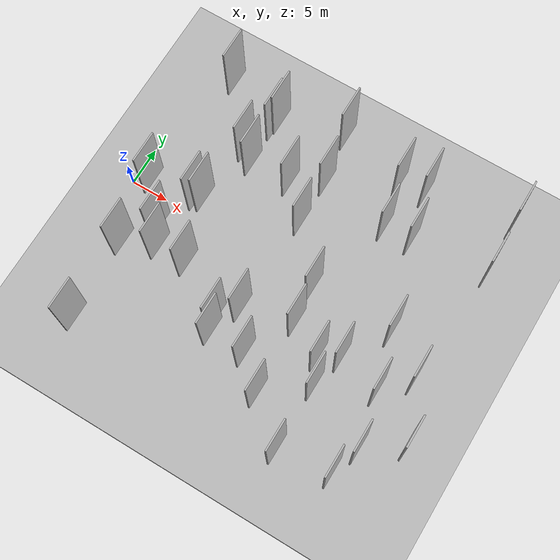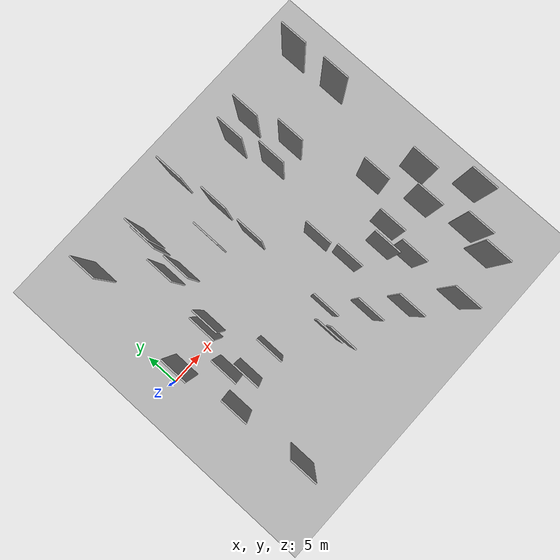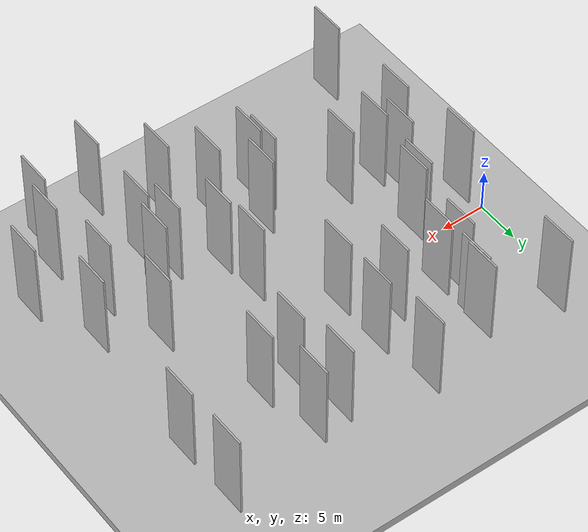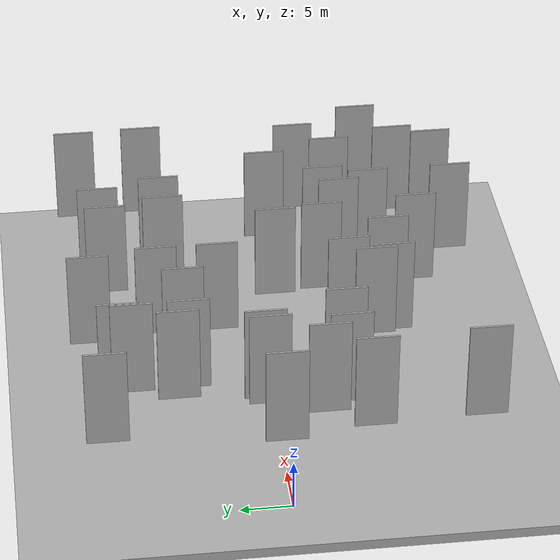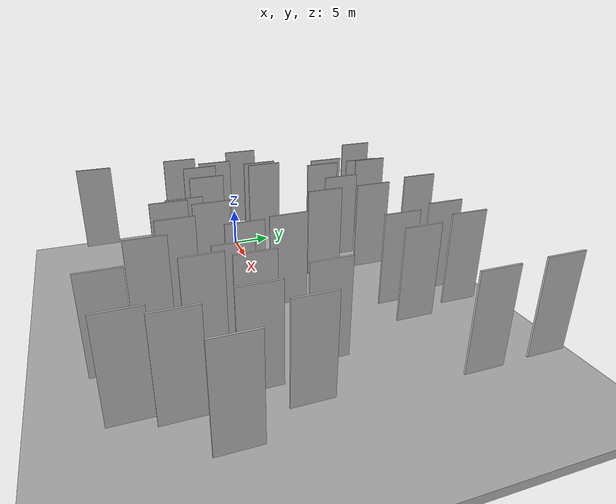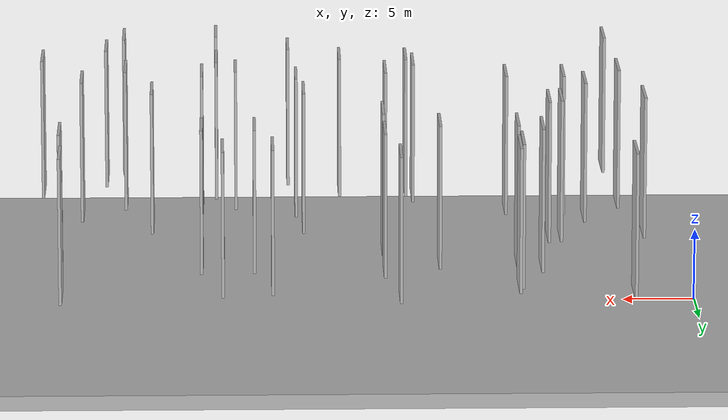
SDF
<?xml version="1.0" encoding="utf-8"?>

<sdf version="1.6">

   <world name="default">

      <gui fullscreen="0">

         <camera name="user_camera">

            <pose>-15 0 4.57585 0 0 0</pose>

            <view_controller>orbit</view_controller>

         </camera>

      </gui>

      <scene>

         <sky>

           <clouds>

             <speed>12</speed>

           </clouds>

         </sky>

         <ambient>0.4 0.4 0.4 1</ambient>

         <background>0.7 0.7 0.7 1</background>

         <shadows>1</shadows>

      </scene>

      <gravity>0 0 -9.8066</gravity>

      <magnetic_field>6e-06 2.3e-05 -4.2e-05</magnetic_field>

      <physics default="0" name="default_physics" type="ode">

         <ode>

            <solver>

               <type>quick</type>

               <iters>10</iters>

               <sor>1.0</sor>

               <use_dynamic_moi_rescaling>0</use_dynamic_moi_rescaling>

            </solver>

            <constraints>

               <cfm>0</cfm>

               <erp>0.2</erp>

               <contact_max_correcting_vel>100</contact_max_correcting_vel>

               <contact_surface_layer>0.001</contact_surface_layer>

            </constraints>

         </ode>

         <max_step_size>0.004</max_step_size>

         <real_time_factor>1</real_time_factor>

         <real_time_update_rate>250</real_time_update_rate>

      </physics>

      <light name="sun" type="directional">

         <cast_shadows>1</cast_shadows>

         <pose>0 0 10 0 0 0</pose>

         <diffuse>0.8 0.8 0.8 1</diffuse>

         <specular>0.2 0.2 0.2 1</specular>

         <attenuation>

            <range>1000</range>

            <constant>0.9</constant>

            <linear>0.01</linear>

            <quadratic>0.001</quadratic>

         </attenuation>

         <direction>-0.5 0.1 -0.9</direction>

      </light>

      <include>

         <name>ground_plane_1</name>

         <uri>model://HANNAS_ground_plane</uri>

         <pose>0 0 0  0 0 0</pose>

      </include>

      <include>

         <name>ground_plane_2</name>

         <uri>model://HANNAS_ground_plane</uri>

         <pose>100 0 0  0 0 0</pose>

      </include>

      <model name="HANNAS_wall_1">

         <static>1</static>

         <pose frame="">12.8453 8.3106 5.0 0.000000 0.000000 1.570796</pose>

         <link name="link">

            <pose frame="">0 0 5.00 0 0 0</pose>

            <collision name="collision">

               <geometry>

                  <box>

                     <size>4.00 0.2 10.00</size>

                  </box>

               </geometry>

               <max_contacts>10</max_contacts>

               <surface>

                  <contact>

                     <ode/>

                  </contact>

                  <bounce/>

                  <friction>

                     <torsional>

                        <ode/>

                     </torsional>

                     <ode/>

                  </friction>

               </surface>

            </collision>

            <visual name="visual">

               <cast_shadows>0</cast_shadows>

               <geometry>

                  <box>

                     <size>4.00 0.2 10.00</size>

                  </box>

               </geometry>

               <material>

                  <script>

                     <uri>model://HANNAS_wall/materials/scripts</uri>

                     <uri>model://HANNAS_wall/materials/textures</uri>

                     <name>vrc/HANNAS_wall</name>

                  </script>

               </material>

            </visual>

            <self_collide>0</self_collide>

            <enable_wind>0</enable_wind>

            <kinematic>0</kinematic>

         </link>

      </model>

      <model name="HANNAS_wall_2">

         <static>1</static>

         <pose frame="">18.1627 8.3795 5.0 0.000000 0.000000 1.570796</pose>

         <link name="link">

            <pose frame="">0 0 5.00 0 0 0</pose>

            <collision name="collision">

               <geometry>

                  <box>

                     <size>4.00 0.2 10.00</size>

                  </box>

               </geometry>

               <max_contacts>10</max_contacts>

               <surface>

                  <contact>

                     <ode/>

                  </contact>

                  <bounce/>

                  <friction>

                     <torsional>

                        <ode/>

                     </torsional>

                     <ode/>

                  </friction>

               </surface>

            </collision>

            <visual name="visual">

               <cast_shadows>0</cast_shadows>

               <geometry>

                  <box>

                     <size>4.00 0.2 10.00</size>

                  </box>

               </geometry>

               <material>

                  <script>

                     <uri>model://HANNAS_wall/materials/scripts</uri>

                     <uri>model://HANNAS_wall/materials/textures</uri>

                     <name>vrc/HANNAS_wall</name>

                  </script>

               </material>

            </visual>

            <self_collide>0</self_collide>

            <enable_wind>0</enable_wind>

            <kinematic>0</kinematic>

         </link>

      </model>

      <model name="HANNAS_wall_3">

         <static>1</static>

         <pose frame="">28.3138 -15.6498 5.0 0.000000 0.000000 1.570796</pose>

         <link name="link">

            <pose frame="">0 0 5.00 0 0 0</pose>

            <collision name="collision">

               <geometry>

                  <box>

                     <size>4.00 0.2 10.00</size>

                  </box>

               </geometry>

               <max_contacts>10</max_contacts>

               <surface>

                  <contact>

                     <ode/>

                  </contact>

                  <bounce/>

                  <friction>

                     <torsional>

                        <ode/>

                     </torsional>

                     <ode/>

                  </friction>

               </surface>

            </collision>

            <visual name="visual">

               <cast_shadows>0</cast_shadows>

               <geometry>

                  <box>

                     <size>4.00 0.2 10.00</size>

                  </box>

               </geometry>

               <material>

                  <script>

                     <uri>model://HANNAS_wall/materials/scripts</uri>

                     <uri>model://HANNAS_wall/materials/textures</uri>

                     <name>vrc/HANNAS_wall</name>

                  </script>

               </material>

            </visual>

            <self_collide>0</self_collide>

            <enable_wind>0</enable_wind>

            <kinematic>0</kinematic>

         </link>

      </model>

      <model name="HANNAS_wall_4">

         <static>1</static>

         <pose frame="">30.8134 9.2446 5.0 0.000000 0.000000 1.570796</pose>

         <link name="link">

            <pose frame="">0 0 5.00 0 0 0</pose>

            <collision name="collision">

               <geometry>

                  <box>

                     <size>4.00 0.2 10.00</size>

                  </box>

               </geometry>

               <max_contacts>10</max_contacts>

               <surface>

                  <contact>

                     <ode/>

                  </contact>

                  <bounce/>

                  <friction>

                     <torsional>

                        <ode/>

                     </torsional>

                     <ode/>

                  </friction>

               </surface>

            </collision>

            <visual name="visual">

               <cast_shadows>0</cast_shadows>

               <geometry>

                  <box>

                     <size>4.00 0.2 10.00</size>

                  </box>

               </geometry>

               <material>

                  <script>

                     <uri>model://HANNAS_wall/materials/scripts</uri>

                     <uri>model://HANNAS_wall/materials/textures</uri>

                     <name>vrc/HANNAS_wall</name>

                  </script>

               </material>

            </visual>

            <self_collide>0</self_collide>

            <enable_wind>0</enable_wind>

            <kinematic>0</kinematic>

         </link>

      </model>

      <model name="HANNAS_wall_5">

         <static>1</static>

         <pose frame="">40.1253 -19.0941 5.0 0.000000 0.000000 1.570796</pose>

         <link name="link">

            <pose frame="">0 0 5.00 0 0 0</pose>

            <collision name="collision">

               <geometry>

                  <box>

                     <size>4.00 0.2 10.00</size>

                  </box>

               </geometry>

               <max_contacts>10</max_contacts>

               <surface>

                  <contact>

                     <ode/>

                  </contact>

                  <bounce/>

                  <friction>

                     <torsional>

                        <ode/>

                     </torsional>

                     <ode/>

                  </friction>

               </surface>

            </collision>

            <visual name="visual">

               <cast_shadows>0</cast_shadows>

               <geometry>

                  <box>

                     <size>4.00 0.2 10.00</size>

                  </box>

               </geometry>

               <material>

                  <script>

                     <uri>model://HANNAS_wall/materials/scripts</uri>

                     <uri>model://HANNAS_wall/materials/textures</uri>

                     <name>vrc/HANNAS_wall</name>

                  </script>

               </material>

            </visual>

            <self_collide>0</self_collide>

            <enable_wind>0</enable_wind>

            <kinematic>0</kinematic>

         </link>

      </model>

      <model name="HANNAS_wall_6">

         <static>1</static>

         <pose frame="">9.5017 1.0078 5.0 0.000000 0.000000 1.570796</pose>

         <link name="link">

            <pose frame="">0 0 5.00 0 0 0</pose>

            <collision name="collision">

               <geometry>

                  <box>

                     <size>4.00 0.2 10.00</size>

                  </box>

               </geometry>

               <max_contacts>10</max_contacts>

               <surface>

                  <contact>

                     <ode/>

                  </contact>

                  <bounce/>

                  <friction>

                     <torsional>

                        <ode/>

                     </torsional>

                     <ode/>

                  </friction>

               </surface>

            </collision>

            <visual name="visual">

               <cast_shadows>0</cast_shadows>

               <geometry>

                  <box>

                     <size>4.00 0.2 10.00</size>

                  </box>

               </geometry>

               <material>

                  <script>

                     <uri>model://HANNAS_wall/materials/scripts</uri>

                     <uri>model://HANNAS_wall/materials/textures</uri>

                     <name>vrc/HANNAS_wall</name>

                  </script>

               </material>

            </visual>

            <self_collide>0</self_collide>

            <enable_wind>0</enable_wind>

            <kinematic>0</kinematic>

         </link>

      </model>

      <model name="HANNAS_wall_7">

         <static>1</static>

         <pose frame="">12.7423 13.6665 5.0 0.000000 0.000000 1.570796</pose>

         <link name="link">

            <pose frame="">0 0 5.00 0 0 0</pose>

            <collision name="collision">

               <geometry>

                  <box>

                     <size>4.00 0.2 10.00</size>

                  </box>

               </geometry>

               <max_contacts>10</max_contacts>

               <surface>

                  <contact>

                     <ode/>

                  </contact>

                  <bounce/>

                  <friction>

                     <torsional>

                        <ode/>

                     </torsional>

                     <ode/>

                  </friction>

               </surface>

            </collision>

            <visual name="visual">

               <cast_shadows>0</cast_shadows>

               <geometry>

                  <box>

                     <size>4.00 0.2 10.00</size>

                  </box>

               </geometry>

               <material>

                  <script>

                     <uri>model://HANNAS_wall/materials/scripts</uri>

                     <uri>model://HANNAS_wall/materials/textures</uri>

                     <name>vrc/HANNAS_wall</name>

                  </script>

               </material>

            </visual>

            <self_collide>0</self_collide>

            <enable_wind>0</enable_wind>

            <kinematic>0</kinematic>

         </link>

      </model>

      <model name="HANNAS_wall_8">

         <static>1</static>

         <pose frame="">21.4914 -8.0244 5.0 0.000000 0.000000 1.570796</pose>

         <link name="link">

            <pose frame="">0 0 5.00 0 0 0</pose>

            <collision name="collision">

               <geometry>

                  <box>

                     <size>4.00 0.2 10.00</size>

                  </box>

               </geometry>

               <max_contacts>10</max_contacts>

               <surface>

                  <contact>

                     <ode/>

                  </contact>

                  <bounce/>

                  <friction>

                     <torsional>

                        <ode/>

                     </torsional>

                     <ode/>

                  </friction>

               </surface>

            </collision>

            <visual name="visual">

               <cast_shadows>0</cast_shadows>

               <geometry>

                  <box>

                     <size>4.00 0.2 10.00</size>

                  </box>

               </geometry>

               <material>

                  <script>

                     <uri>model://HANNAS_wall/materials/scripts</uri>

                     <uri>model://HANNAS_wall/materials/textures</uri>

                     <name>vrc/HANNAS_wall</name>

                  </script>

               </material>

            </visual>

            <self_collide>0</self_collide>

            <enable_wind>0</enable_wind>

            <kinematic>0</kinematic>

         </link>

      </model>

      <model name="HANNAS_wall_9">

         <static>1</static>

         <pose frame="">27.8183 -6.2099 5.0 0.000000 0.000000 1.570796</pose>

         <link name="link">

            <pose frame="">0 0 5.00 0 0 0</pose>

            <collision name="collision">

               <geometry>

                  <box>

                     <size>4.00 0.2 10.00</size>

                  </box>

               </geometry>

               <max_contacts>10</max_contacts>

               <surface>

                  <contact>

                     <ode/>

                  </contact>

                  <bounce/>

                  <friction>

                     <torsional>

                        <ode/>

                     </torsional>

                     <ode/>

                  </friction>

               </surface>

            </collision>

            <visual name="visual">

               <cast_shadows>0</cast_shadows>

               <geometry>

                  <box>

                     <size>4.00 0.2 10.00</size>

                  </box>

               </geometry>

               <material>

                  <script>

                     <uri>model://HANNAS_wall/materials/scripts</uri>

                     <uri>model://HANNAS_wall/materials/textures</uri>

                     <name>vrc/HANNAS_wall</name>

                  </script>

               </material>

            </visual>

            <self_collide>0</self_collide>

            <enable_wind>0</enable_wind>

            <kinematic>0</kinematic>

         </link>

      </model>

      <model name="HANNAS_wall_10">

         <static>1</static>

         <pose frame="">39.8515 -8.5372 5.0 0.000000 0.000000 1.570796</pose>

         <link name="link">

            <pose frame="">0 0 5.00 0 0 0</pose>

            <collision name="collision">

               <geometry>

                  <box>

                     <size>4.00 0.2 10.00</size>

                  </box>

               </geometry>

               <max_contacts>10</max_contacts>

               <surface>

                  <contact>

                     <ode/>

                  </contact>

                  <bounce/>

                  <friction>

                     <torsional>

                        <ode/>

                     </torsional>

                     <ode/>

                  </friction>

               </surface>

            </collision>

            <visual name="visual">

               <cast_shadows>0</cast_shadows>

               <geometry>

                  <box>

                     <size>4.00 0.2 10.00</size>

                  </box>

               </geometry>

               <material>

                  <script>

                     <uri>model://HANNAS_wall/materials/scripts</uri>

                     <uri>model://HANNAS_wall/materials/textures</uri>

                     <name>vrc/HANNAS_wall</name>

                  </script>

               </material>

            </visual>

            <self_collide>0</self_collide>

            <enable_wind>0</enable_wind>

            <kinematic>0</kinematic>

         </link>

      </model>

      <model name="HANNAS_wall_11">

         <static>1</static>

         <pose frame="">21.9610 10.6556 5.0 0.000000 0.000000 1.570796</pose>

         <link name="link">

            <pose frame="">0 0 5.00 0 0 0</pose>

            <collision name="collision">

               <geometry>

                  <box>

                     <size>4.00 0.2 10.00</size>

                  </box>

               </geometry>

               <max_contacts>10</max_contacts>

               <surface>

                  <contact>

                     <ode/>

                  </contact>

                  <bounce/>

                  <friction>

                     <torsional>

                        <ode/>

                     </torsional>

                     <ode/>

                  </friction>

               </surface>

            </collision>

            <visual name="visual">

               <cast_shadows>0</cast_shadows>

               <geometry>

                  <box>

                     <size>4.00 0.2 10.00</size>

                  </box>

               </geometry>

               <material>

                  <script>

                     <uri>model://HANNAS_wall/materials/scripts</uri>

                     <uri>model://HANNAS_wall/materials/textures</uri>

                     <name>vrc/HANNAS_wall</name>

                  </script>

               </material>

            </visual>

            <self_collide>0</self_collide>

            <enable_wind>0</enable_wind>

            <kinematic>0</kinematic>

         </link>

      </model>

      <model name="HANNAS_wall_12">

         <static>1</static>

         <pose frame="">19.4696 -10.4478 5.0 0.000000 0.000000 1.570796</pose>

         <link name="link">

            <pose frame="">0 0 5.00 0 0 0</pose>

            <collision name="collision">

               <geometry>

                  <box>

                     <size>4.00 0.2 10.00</size>

                  </box>

               </geometry>

               <max_contacts>10</max_contacts>

               <surface>

                  <contact>

                     <ode/>

                  </contact>

                  <bounce/>

                  <friction>

                     <torsional>

                        <ode/>

                     </torsional>

                     <ode/>

                  </friction>

               </surface>

            </collision>

            <visual name="visual">

               <cast_shadows>0</cast_shadows>

               <geometry>

                  <box>

                     <size>4.00 0.2 10.00</size>

                  </box>

               </geometry>

               <material>

                  <script>

                     <uri>model://HANNAS_wall/materials/scripts</uri>

                     <uri>model://HANNAS_wall/materials/textures</uri>

                     <name>vrc/HANNAS_wall</name>

                  </script>

               </material>

            </visual>

            <self_collide>0</self_collide>

            <enable_wind>0</enable_wind>

            <kinematic>0</kinematic>

         </link>

      </model>

      <model name="HANNAS_wall_13">

         <static>1</static>

         <pose frame="">19.9382 -12.1667 5.0 0.000000 0.000000 1.570796</pose>

         <link name="link">

            <pose frame="">0 0 5.00 0 0 0</pose>

            <collision name="collision">

               <geometry>

                  <box>

                     <size>4.00 0.2 10.00</size>

                  </box>

               </geometry>

               <max_contacts>10</max_contacts>

               <surface>

                  <contact>

                     <ode/>

                  </contact>

                  <bounce/>

                  <friction>

                     <torsional>

                        <ode/>

                     </torsional>

                     <ode/>

                  </friction>

               </surface>

            </collision>

            <visual name="visual">

               <cast_shadows>0</cast_shadows>

               <geometry>

                  <box>

                     <size>4.00 0.2 10.00</size>

                  </box>

               </geometry>

               <material>

                  <script>

                     <uri>model://HANNAS_wall/materials/scripts</uri>

                     <uri>model://HANNAS_wall/materials/textures</uri>

                     <name>vrc/HANNAS_wall</name>

                  </script>

               </material>

            </visual>

            <self_collide>0</self_collide>

            <enable_wind>0</enable_wind>

            <kinematic>0</kinematic>

         </link>

      </model>

      <model name="HANNAS_wall_14">

         <static>1</static>

         <pose frame="">21.9502 4.7360 5.0 0.000000 0.000000 1.570796</pose>

         <link name="link">

            <pose frame="">0 0 5.00 0 0 0</pose>

            <collision name="collision">

               <geometry>

                  <box>

                     <size>4.00 0.2 10.00</size>

                  </box>

               </geometry>

               <max_contacts>10</max_contacts>

               <surface>

                  <contact>

                     <ode/>

                  </contact>

                  <bounce/>

                  <friction>

                     <torsional>

                        <ode/>

                     </torsional>

                     <ode/>

                  </friction>

               </surface>

            </collision>

            <visual name="visual">

               <cast_shadows>0</cast_shadows>

               <geometry>

                  <box>

                     <size>4.00 0.2 10.00</size>

                  </box>

               </geometry>

               <material>

                  <script>

                     <uri>model://HANNAS_wall/materials/scripts</uri>

                     <uri>model://HANNAS_wall/materials/textures</uri>

                     <name>vrc/HANNAS_wall</name>

                  </script>

               </material>

            </visual>

            <self_collide>0</self_collide>

            <enable_wind>0</enable_wind>

            <kinematic>0</kinematic>

         </link>

      </model>

      <model name="HANNAS_wall_15">

         <static>1</static>

         <pose frame="">12.9698 14.8573 5.0 0.000000 0.000000 1.570796</pose>

         <link name="link">

            <pose frame="">0 0 5.00 0 0 0</pose>

            <collision name="collision">

               <geometry>

                  <box>

                     <size>4.00 0.2 10.00</size>

                  </box>

               </geometry>

               <max_contacts>10</max_contacts>

               <surface>

                  <contact>

                     <ode/>

                  </contact>

                  <bounce/>

                  <friction>

                     <torsional>

                        <ode/>

                     </torsional>

                     <ode/>

                  </friction>

               </surface>

            </collision>

            <visual name="visual">

               <cast_shadows>0</cast_shadows>

               <geometry>

                  <box>

                     <size>4.00 0.2 10.00</size>

                  </box>

               </geometry>

               <material>

                  <script>

                     <uri>model://HANNAS_wall/materials/scripts</uri>

                     <uri>model://HANNAS_wall/materials/textures</uri>

                     <name>vrc/HANNAS_wall</name>

                  </script>

               </material>

            </visual>

            <self_collide>0</self_collide>

            <enable_wind>0</enable_wind>

            <kinematic>0</kinematic>

         </link>

      </model>

      <model name="HANNAS_wall_16">

         <static>1</static>

         <pose frame="">34.4511 -7.2020 5.0 0.000000 0.000000 1.570796</pose>

         <link name="link">

            <pose frame="">0 0 5.00 0 0 0</pose>

            <collision name="collision">

               <geometry>

                  <box>

                     <size>4.00 0.2 10.00</size>

                  </box>

               </geometry>

               <max_contacts>10</max_contacts>

               <surface>

                  <contact>

                     <ode/>

                  </contact>

                  <bounce/>

                  <friction>

                     <torsional>

                        <ode/>

                     </torsional>

                     <ode/>

                  </friction>

               </surface>

            </collision>

            <visual name="visual">

               <cast_shadows>0</cast_shadows>

               <geometry>

                  <box>

                     <size>4.00 0.2 10.00</size>

                  </box>

               </geometry>

               <material>

                  <script>

                     <uri>model://HANNAS_wall/materials/scripts</uri>

                     <uri>model://HANNAS_wall/materials/textures</uri>

                     <name>vrc/HANNAS_wall</name>

                  </script>

               </material>

            </visual>

            <self_collide>0</self_collide>

            <enable_wind>0</enable_wind>

            <kinematic>0</kinematic>

         </link>

      </model>

      <model name="HANNAS_wall_17">

         <static>1</static>

         <pose frame="">37.9064 -1.6458 5.0 0.000000 0.000000 1.570796</pose>

         <link name="link">

            <pose frame="">0 0 5.00 0 0 0</pose>

            <collision name="collision">

               <geometry>

                  <box>

                     <size>4.00 0.2 10.00</size>

                  </box>

               </geometry>

               <max_contacts>10</max_contacts>

               <surface>

                  <contact>

                     <ode/>

                  </contact>

                  <bounce/>

                  <friction>

                     <torsional>

                        <ode/>

                     </torsional>

                     <ode/>

                  </friction>

               </surface>

            </collision>

            <visual name="visual">

               <cast_shadows>0</cast_shadows>

               <geometry>

                  <box>

                     <size>4.00 0.2 10.00</size>

                  </box>

               </geometry>

               <material>

                  <script>

                     <uri>model://HANNAS_wall/materials/scripts</uri>

                     <uri>model://HANNAS_wall/materials/textures</uri>

                     <name>vrc/HANNAS_wall</name>

                  </script>

               </material>

            </visual>

            <self_collide>0</self_collide>

            <enable_wind>0</enable_wind>

            <kinematic>0</kinematic>

         </link>

      </model>

      <model name="HANNAS_wall_18">

         <static>1</static>

         <pose frame="">32.0667 -8.4886 5.0 0.000000 0.000000 1.570796</pose>

         <link name="link">

            <pose frame="">0 0 5.00 0 0 0</pose>

            <collision name="collision">

               <geometry>

                  <box>

                     <size>4.00 0.2 10.00</size>

                  </box>

               </geometry>

               <max_contacts>10</max_contacts>

               <surface>

                  <contact>

                     <ode/>

                  </contact>

                  <bounce/>

                  <friction>

                     <torsional>

                        <ode/>

                     </torsional>

                     <ode/>

                  </friction>

               </surface>

            </collision>

            <visual name="visual">

               <cast_shadows>0</cast_shadows>

               <geometry>

                  <box>

                     <size>4.00 0.2 10.00</size>

                  </box>

               </geometry>

               <material>

                  <script>

                     <uri>model://HANNAS_wall/materials/scripts</uri>

                     <uri>model://HANNAS_wall/materials/textures</uri>

                     <name>vrc/HANNAS_wall</name>

                  </script>

               </material>

            </visual>

            <self_collide>0</self_collide>

            <enable_wind>0</enable_wind>

            <kinematic>0</kinematic>

         </link>

      </model>

      <model name="HANNAS_wall_19">

         <static>1</static>

         <pose frame="">34.4124 9.3689 5.0 0.000000 0.000000 1.570796</pose>

         <link name="link">

            <pose frame="">0 0 5.00 0 0 0</pose>

            <collision name="collision">

               <geometry>

                  <box>

                     <size>4.00 0.2 10.00</size>

                  </box>

               </geometry>

               <max_contacts>10</max_contacts>

               <surface>

                  <contact>

                     <ode/>

                  </contact>

                  <bounce/>

                  <friction>

                     <torsional>

                        <ode/>

                     </torsional>

                     <ode/>

                  </friction>

               </surface>

            </collision>

            <visual name="visual">

               <cast_shadows>0</cast_shadows>

               <geometry>

                  <box>

                     <size>4.00 0.2 10.00</size>

                  </box>

               </geometry>

               <material>

                  <script>

                     <uri>model://HANNAS_wall/materials/scripts</uri>

                     <uri>model://HANNAS_wall/materials/textures</uri>

                     <name>vrc/HANNAS_wall</name>

                  </script>

               </material>

            </visual>

            <self_collide>0</self_collide>

            <enable_wind>0</enable_wind>

            <kinematic>0</kinematic>

         </link>

      </model>

      <model name="HANNAS_wall_20">

         <static>1</static>

         <pose frame="">33.4410 -11.6214 5.0 0.000000 0.000000 1.570796</pose>

         <link name="link">

            <pose frame="">0 0 5.00 0 0 0</pose>

            <collision name="collision">

               <geometry>

                  <box>

                     <size>4.00 0.2 10.00</size>

                  </box>

               </geometry>

               <max_contacts>10</max_contacts>

               <surface>

                  <contact>

                     <ode/>

                  </contact>

                  <bounce/>

                  <friction>

                     <torsional>

                        <ode/>

                     </torsional>

                     <ode/>

                  </friction>

               </surface>

            </collision>

            <visual name="visual">

               <cast_shadows>0</cast_shadows>

               <geometry>

                  <box>

                     <size>4.00 0.2 10.00</size>

                  </box>

               </geometry>

               <material>

                  <script>

                     <uri>model://HANNAS_wall/materials/scripts</uri>

                     <uri>model://HANNAS_wall/materials/textures</uri>

                     <name>vrc/HANNAS_wall</name>

                  </script>

               </material>

            </visual>

            <self_collide>0</self_collide>

            <enable_wind>0</enable_wind>

            <kinematic>0</kinematic>

         </link>

      </model>

      <model name="HANNAS_wall_21">

         <static>1</static>

         <pose frame="">10.3598 1.3496 5.0 0.000000 0.000000 1.570796</pose>

         <link name="link">

            <pose frame="">0 0 5.00 0 0 0</pose>

            <collision name="collision">

               <geometry>

                  <box>

                     <size>4.00 0.2 10.00</size>

                  </box>

               </geometry>

               <max_contacts>10</max_contacts>

               <surface>

                  <contact>

                     <ode/>

                  </contact>

                  <bounce/>

                  <friction>

                     <torsional>

                        <ode/>

                     </torsional>

                     <ode/>

                  </friction>

               </surface>

            </collision>

            <visual name="visual">

               <cast_shadows>0</cast_shadows>

               <geometry>

                  <box>

                     <size>4.00 0.2 10.00</size>

                  </box>

               </geometry>

               <material>

                  <script>

                     <uri>model://HANNAS_wall/materials/scripts</uri>

                     <uri>model://HANNAS_wall/materials/textures</uri>

                     <name>vrc/HANNAS_wall</name>

                  </script>

               </material>

            </visual>

            <self_collide>0</self_collide>

            <enable_wind>0</enable_wind>

            <kinematic>0</kinematic>

         </link>

      </model>

      <model name="HANNAS_wall_22">

         <static>1</static>

         <pose frame="">33.4811 -19.9595 5.0 0.000000 0.000000 1.570796</pose>

         <link name="link">

            <pose frame="">0 0 5.00 0 0 0</pose>

            <collision name="collision">

               <geometry>

                  <box>

                     <size>4.00 0.2 10.00</size>

                  </box>

               </geometry>

               <max_contacts>10</max_contacts>

               <surface>

                  <contact>

                     <ode/>

                  </contact>

                  <bounce/>

                  <friction>

                     <torsional>

                        <ode/>

                     </torsional>

                     <ode/>

                  </friction>

               </surface>

            </collision>

            <visual name="visual">

               <cast_shadows>0</cast_shadows>

               <geometry>

                  <box>

                     <size>4.00 0.2 10.00</size>

                  </box>

               </geometry>

               <material>

                  <script>

                     <uri>model://HANNAS_wall/materials/scripts</uri>

                     <uri>model://HANNAS_wall/materials/textures</uri>

                     <name>vrc/HANNAS_wall</name>

                  </script>

               </material>

            </visual>

            <self_collide>0</self_collide>

            <enable_wind>0</enable_wind>

            <kinematic>0</kinematic>

         </link>

      </model>

      <model name="HANNAS_wall_23">

         <static>1</static>

         <pose frame="">11.2123 9.4405 5.0 0.000000 0.000000 1.570796</pose>

         <link name="link">

            <pose frame="">0 0 5.00 0 0 0</pose>

            <collision name="collision">

               <geometry>

                  <box>

                     <size>4.00 0.2 10.00</size>

                  </box>

               </geometry>

               <max_contacts>10</max_contacts>

               <surface>

                  <contact>

                     <ode/>

                  </contact>

                  <bounce/>

                  <friction>

                     <torsional>

                        <ode/>

                     </torsional>

                     <ode/>

                  </friction>

               </surface>

            </collision>

            <visual name="visual">

               <cast_shadows>0</cast_shadows>

               <geometry>

                  <box>

                     <size>4.00 0.2 10.00</size>

                  </box>

               </geometry>

               <material>

                  <script>

                     <uri>model://HANNAS_wall/materials/scripts</uri>

                     <uri>model://HANNAS_wall/materials/textures</uri>

                     <name>vrc/HANNAS_wall</name>

                  </script>

               </material>

            </visual>

            <self_collide>0</self_collide>

            <enable_wind>0</enable_wind>

            <kinematic>0</kinematic>

         </link>

      </model>

      <model name="HANNAS_wall_24">

         <static>1</static>

         <pose frame="">45.8084 -12.1148 5.0 0.000000 0.000000 1.570796</pose>

         <link name="link">

            <pose frame="">0 0 5.00 0 0 0</pose>

            <collision name="collision">

               <geometry>

                  <box>

                     <size>4.00 0.2 10.00</size>

                  </box>

               </geometry>

               <max_contacts>10</max_contacts>

               <surface>

                  <contact>

                     <ode/>

                  </contact>

                  <bounce/>

                  <friction>

                     <torsional>

                        <ode/>

                     </torsional>

                     <ode/>

                  </friction>

               </surface>

            </collision>

            <visual name="visual">

               <cast_shadows>0</cast_shadows>

               <geometry>

                  <box>

                     <size>4.00 0.2 10.00</size>

                  </box>

               </geometry>

               <material>

                  <script>

                     <uri>model://HANNAS_wall/materials/scripts</uri>

                     <uri>model://HANNAS_wall/materials/textures</uri>

                     <name>vrc/HANNAS_wall</name>

                  </script>

               </material>

            </visual>

            <self_collide>0</self_collide>

            <enable_wind>0</enable_wind>

            <kinematic>0</kinematic>

         </link>

      </model>

      <model name="HANNAS_wall_25">

         <static>1</static>

         <pose frame="">13.0143 -6.5924 5.0 0.000000 0.000000 1.570796</pose>

         <link name="link">

            <pose frame="">0 0 5.00 0 0 0</pose>

            <collision name="collision">

               <geometry>

                  <box>

                     <size>4.00 0.2 10.00</size>

                  </box>

               </geometry>

               <max_contacts>10</max_contacts>

               <surface>

                  <contact>

                     <ode/>

                  </contact>

                  <bounce/>

                  <friction>

                     <torsional>

                        <ode/>

                     </torsional>

                     <ode/>

                  </friction>

               </surface>

            </collision>

            <visual name="visual">

               <cast_shadows>0</cast_shadows>

               <geometry>

                  <box>

                     <size>4.00 0.2 10.00</size>

                  </box>

               </geometry>

               <material>

                  <script>

                     <uri>model://HANNAS_wall/materials/scripts</uri>

                     <uri>model://HANNAS_wall/materials/textures</uri>

                     <name>vrc/HANNAS_wall</name>

                  </script>

               </material>

            </visual>

            <self_collide>0</self_collide>

            <enable_wind>0</enable_wind>

            <kinematic>0</kinematic>

         </link>

      </model>

      <model name="HANNAS_wall_26">

         <static>1</static>

         <pose frame="">8.9783 -6.5393 5.0 0.000000 0.000000 1.570796</pose>

         <link name="link">

            <pose frame="">0 0 5.00 0 0 0</pose>

            <collision name="collision">

               <geometry>

                  <box>

                     <size>4.00 0.2 10.00</size>

                  </box>

               </geometry>

               <max_contacts>10</max_contacts>

               <surface>

                  <contact>

                     <ode/>

                  </contact>

                  <bounce/>

                  <friction>

                     <torsional>

                        <ode/>

                     </torsional>

                     <ode/>

                  </friction>

               </surface>

            </collision>

            <visual name="visual">

               <cast_shadows>0</cast_shadows>

               <geometry>

                  <box>

                     <size>4.00 0.2 10.00</size>

                  </box>

               </geometry>

               <material>

                  <script>

                     <uri>model://HANNAS_wall/materials/scripts</uri>

                     <uri>model://HANNAS_wall/materials/textures</uri>

                     <name>vrc/HANNAS_wall</name>

                  </script>

               </material>

            </visual>

            <self_collide>0</self_collide>

            <enable_wind>0</enable_wind>

            <kinematic>0</kinematic>

         </link>

      </model>

      <model name="HANNAS_wall_27">

         <static>1</static>

         <pose frame="">27.3443 -1.5603 5.0 0.000000 0.000000 1.570796</pose>

         <link name="link">

            <pose frame="">0 0 5.00 0 0 0</pose>

            <collision name="collision">

               <geometry>

                  <box>

                     <size>4.00 0.2 10.00</size>

                  </box>

               </geometry>

               <max_contacts>10</max_contacts>

               <surface>

                  <contact>

                     <ode/>

                  </contact>

                  <bounce/>

                  <friction>

                     <torsional>

                        <ode/>

                     </torsional>

                     <ode/>

                  </friction>

               </surface>

            </collision>

            <visual name="visual">

               <cast_shadows>0</cast_shadows>

               <geometry>

                  <box>

                     <size>4.00 0.2 10.00</size>

                  </box>

               </geometry>

               <material>

                  <script>

                     <uri>model://HANNAS_wall/materials/scripts</uri>

                     <uri>model://HANNAS_wall/materials/textures</uri>

                     <name>vrc/HANNAS_wall</name>

                  </script>

               </material>

            </visual>

            <self_collide>0</self_collide>

            <enable_wind>0</enable_wind>

            <kinematic>0</kinematic>

         </link>

      </model>

      <model name="HANNAS_wall_28">

         <static>1</static>

         <pose frame="">41.3364 -15.3041 5.0 0.000000 0.000000 1.570796</pose>

         <link name="link">

            <pose frame="">0 0 5.00 0 0 0</pose>

            <collision name="collision">

               <geometry>

                  <box>

                     <size>4.00 0.2 10.00</size>

                  </box>

               </geometry>

               <max_contacts>10</max_contacts>

               <surface>

                  <contact>

                     <ode/>

                  </contact>

                  <bounce/>

                  <friction>

                     <torsional>

                        <ode/>

                     </torsional>

                     <ode/>

                  </friction>

               </surface>

            </collision>

            <visual name="visual">

               <cast_shadows>0</cast_shadows>

               <geometry>

                  <box>

                     <size>4.00 0.2 10.00</size>

                  </box>

               </geometry>

               <material>

                  <script>

                     <uri>model://HANNAS_wall/materials/scripts</uri>

                     <uri>model://HANNAS_wall/materials/textures</uri>

                     <name>vrc/HANNAS_wall</name>

                  </script>

               </material>

            </visual>

            <self_collide>0</self_collide>

            <enable_wind>0</enable_wind>

            <kinematic>0</kinematic>

         </link>

      </model>

      <model name="HANNAS_wall_29">

         <static>1</static>

         <pose frame="">7.5657 -4.3244 5.0 0.000000 0.000000 1.570796</pose>

         <link name="link">

            <pose frame="">0 0 5.00 0 0 0</pose>

            <collision name="collision">

               <geometry>

                  <box>

                     <size>4.00 0.2 10.00</size>

                  </box>

               </geometry>

               <max_contacts>10</max_contacts>

               <surface>

                  <contact>

                     <ode/>

                  </contact>

                  <bounce/>

                  <friction>

                     <torsional>

                        <ode/>

                     </torsional>

                     <ode/>

                  </friction>

               </surface>

            </collision>

            <visual name="visual">

               <cast_shadows>0</cast_shadows>

               <geometry>

                  <box>

                     <size>4.00 0.2 10.00</size>

                  </box>

               </geometry>

               <material>

                  <script>

                     <uri>model://HANNAS_wall/materials/scripts</uri>

                     <uri>model://HANNAS_wall/materials/textures</uri>

                     <name>vrc/HANNAS_wall</name>

                  </script>

               </material>

            </visual>

            <self_collide>0</self_collide>

            <enable_wind>0</enable_wind>

            <kinematic>0</kinematic>

         </link>

      </model>

      <model name="HANNAS_wall_30">

         <static>1</static>

         <pose frame="">32.9600 15.5411 5.0 0.000000 0.000000 1.570796</pose>

         <link name="link">

            <pose frame="">0 0 5.00 0 0 0</pose>

            <collision name="collision">

               <geometry>

                  <box>

                     <size>4.00 0.2 10.00</size>

                  </box>

               </geometry>

               <max_contacts>10</max_contacts>

               <surface>

                  <contact>

                     <ode/>

                  </contact>

                  <bounce/>

                  <friction>

                     <torsional>

                        <ode/>

                     </torsional>

                     <ode/>

                  </friction>

               </surface>

            </collision>

            <visual name="visual">

               <cast_shadows>0</cast_shadows>

               <geometry>

                  <box>

                     <size>4.00 0.2 10.00</size>

                  </box>

               </geometry>

               <material>

                  <script>

                     <uri>model://HANNAS_wall/materials/scripts</uri>

                     <uri>model://HANNAS_wall/materials/textures</uri>

                     <name>vrc/HANNAS_wall</name>

                  </script>

               </material>

            </visual>

            <self_collide>0</self_collide>

            <enable_wind>0</enable_wind>

            <kinematic>0</kinematic>

         </link>

      </model>

      <model name="HANNAS_wall_31">

         <static>1</static>

         <pose frame="">4.9868 -8.3129 5.0 0.000000 0.000000 1.570796</pose>

         <link name="link">

            <pose frame="">0 0 5.00 0 0 0</pose>

            <collision name="collision">

               <geometry>

                  <box>

                     <size>4.00 0.2 10.00</size>

                  </box>

               </geometry>

               <max_contacts>10</max_contacts>

               <surface>

                  <contact>

                     <ode/>

                  </contact>

                  <bounce/>

                  <friction>

                     <torsional>

                        <ode/>

                     </torsional>

                     <ode/>

                  </friction>

               </surface>

            </collision>

            <visual name="visual">

               <cast_shadows>0</cast_shadows>

               <geometry>

                  <box>

                     <size>4.00 0.2 10.00</size>

                  </box>

               </geometry>

               <material>

                  <script>

                     <uri>model://HANNAS_wall/materials/scripts</uri>

                     <uri>model://HANNAS_wall/materials/textures</uri>

                     <name>vrc/HANNAS_wall</name>

                  </script>

               </material>

            </visual>

            <self_collide>0</self_collide>

            <enable_wind>0</enable_wind>

            <kinematic>0</kinematic>

         </link>

      </model>

      <model name="HANNAS_wall_32">

         <static>1</static>

         <pose frame="">44.0112 10.4388 5.0 0.000000 0.000000 1.570796</pose>

         <link name="link">

            <pose frame="">0 0 5.00 0 0 0</pose>

            <collision name="collision">

               <geometry>

                  <box>

                     <size>4.00 0.2 10.00</size>

                  </box>

               </geometry>

               <max_contacts>10</max_contacts>

               <surface>

                  <contact>

                     <ode/>

                  </contact>

                  <bounce/>

                  <friction>

                     <torsional>

                        <ode/>

                     </torsional>

                     <ode/>

                  </friction>

               </surface>

            </collision>

            <visual name="visual">

               <cast_shadows>0</cast_shadows>

               <geometry>

                  <box>

                     <size>4.00 0.2 10.00</size>

                  </box>

               </geometry>

               <material>

                  <script>

                     <uri>model://HANNAS_wall/materials/scripts</uri>

                     <uri>model://HANNAS_wall/materials/textures</uri>

                     <name>vrc/HANNAS_wall</name>

                  </script>

               </material>

            </visual>

            <self_collide>0</self_collide>

            <enable_wind>0</enable_wind>

            <kinematic>0</kinematic>

         </link>

      </model>

      <model name="HANNAS_wall_33">

         <static>1</static>

         <pose frame="">5.3981 -18.8630 5.0 0.000000 0.000000 1.570796</pose>

         <link name="link">

            <pose frame="">0 0 5.00 0 0 0</pose>

            <collision name="collision">

               <geometry>

                  <box>

                     <size>4.00 0.2 10.00</size>

                  </box>

               </geometry>

               <max_contacts>10</max_contacts>

               <surface>

                  <contact>

                     <ode/>

                  </contact>

                  <bounce/>

                  <friction>

                     <torsional>

                        <ode/>

                     </torsional>

                     <ode/>

                  </friction>

               </surface>

            </collision>

            <visual name="visual">

               <cast_shadows>0</cast_shadows>

               <geometry>

                  <box>

                     <size>4.00 0.2 10.00</size>

                  </box>

               </geometry>

               <material>

                  <script>

                     <uri>model://HANNAS_wall/materials/scripts</uri>

                     <uri>model://HANNAS_wall/materials/textures</uri>

                     <name>vrc/HANNAS_wall</name>

                  </script>

               </material>

            </visual>

            <self_collide>0</self_collide>

            <enable_wind>0</enable_wind>

            <kinematic>0</kinematic>

         </link>

      </model>

      <model name="HANNAS_wall_34">

         <static>1</static>

         <pose frame="">42.8641 -5.1764 5.0 0.000000 0.000000 1.570796</pose>

         <link name="link">

            <pose frame="">0 0 5.00 0 0 0</pose>

            <collision name="collision">

               <geometry>

                  <box>

                     <size>4.00 0.2 10.00</size>

                  </box>

               </geometry>

               <max_contacts>10</max_contacts>

               <surface>

                  <contact>

                     <ode/>

                  </contact>

                  <bounce/>

                  <friction>

                     <torsional>

                        <ode/>

                     </torsional>

                     <ode/>

                  </friction>

               </surface>

            </collision>

            <visual name="visual">

               <cast_shadows>0</cast_shadows>

               <geometry>

                  <box>

                     <size>4.00 0.2 10.00</size>

                  </box>

               </geometry>

               <material>

                  <script>

                     <uri>model://HANNAS_wall/materials/scripts</uri>

                     <uri>model://HANNAS_wall/materials/textures</uri>

                     <name>vrc/HANNAS_wall</name>

                  </script>

               </material>

            </visual>

            <self_collide>0</self_collide>

            <enable_wind>0</enable_wind>

            <kinematic>0</kinematic>

         </link>

      </model>

      <model name="HANNAS_wall_35">

         <static>1</static>

         <pose frame="">3.6809 0.1454 5.0 0.000000 0.000000 1.570796</pose>

         <link name="link">

            <pose frame="">0 0 5.00 0 0 0</pose>

            <collision name="collision">

               <geometry>

                  <box>

                     <size>4.00 0.2 10.00</size>

                  </box>

               </geometry>

               <max_contacts>10</max_contacts>

               <surface>

                  <contact>

                     <ode/>

                  </contact>

                  <bounce/>

                  <friction>

                     <torsional>

                        <ode/>

                     </torsional>

                     <ode/>

                  </friction>

               </surface>

            </collision>

            <visual name="visual">

               <cast_shadows>0</cast_shadows>

               <geometry>

                  <box>

                     <size>4.00 0.2 10.00</size>

                  </box>

               </geometry>

               <material>

                  <script>

                     <uri>model://HANNAS_wall/materials/scripts</uri>

                     <uri>model://HANNAS_wall/materials/textures</uri>

                     <name>vrc/HANNAS_wall</name>

                  </script>

               </material>

            </visual>

            <self_collide>0</self_collide>

            <enable_wind>0</enable_wind>

            <kinematic>0</kinematic>

         </link>

      </model>

      <model name="HANNAS_wall_36">

         <static>1</static>

         <pose frame="">43.8136 17.2975 5.0 0.000000 0.000000 1.570796</pose>

         <link name="link">

            <pose frame="">0 0 5.00 0 0 0</pose>

            <collision name="collision">

               <geometry>

                  <box>

                     <size>4.00 0.2 10.00</size>

                  </box>

               </geometry>

               <max_contacts>10</max_contacts>

               <surface>

                  <contact>

                     <ode/>

                  </contact>

                  <bounce/>

                  <friction>

                     <torsional>

                        <ode/>

                     </torsional>

                     <ode/>

                  </friction>

               </surface>

            </collision>

            <visual name="visual">

               <cast_shadows>0</cast_shadows>

               <geometry>

                  <box>

                     <size>4.00 0.2 10.00</size>

                  </box>

               </geometry>

               <material>

                  <script>

                     <uri>model://HANNAS_wall/materials/scripts</uri>

                     <uri>model://HANNAS_wall/materials/textures</uri>

                     <name>vrc/HANNAS_wall</name>

                  </script>

               </material>

            </visual>

            <self_collide>0</self_collide>

            <enable_wind>0</enable_wind>

            <kinematic>0</kinematic>

         </link>

      </model>

      <model name="HANNAS_wall_37">

         <static>1</static>

         <pose frame="">5.3094 16.5821 5.0 0.000000 0.000000 1.570796</pose>

         <link name="link">

            <pose frame="">0 0 5.00 0 0 0</pose>

            <collision name="collision">

               <geometry>

                  <box>

                     <size>4.00 0.2 10.00</size>

                  </box>

               </geometry>

               <max_contacts>10</max_contacts>

               <surface>

                  <contact>

                     <ode/>

                  </contact>

                  <bounce/>

                  <friction>

                     <torsional>

                        <ode/>

                     </torsional>

                     <ode/>

                  </friction>

               </surface>

            </collision>

            <visual name="visual">

               <cast_shadows>0</cast_shadows>

               <geometry>

                  <box>

                     <size>4.00 0.2 10.00</size>

                  </box>

               </geometry>

               <material>

                  <script>

                     <uri>model://HANNAS_wall/materials/scripts</uri>

                     <uri>model://HANNAS_wall/materials/textures</uri>

                     <name>vrc/HANNAS_wall</name>

                  </script>

               </material>

            </visual>

            <self_collide>0</self_collide>

            <enable_wind>0</enable_wind>

            <kinematic>0</kinematic>

         </link>

      </model>

      <model name="HANNAS_wall_38">

         <static>1</static>

         <pose frame="">24.6614 -12.3384 5.0 0.000000 0.000000 1.570796</pose>

         <link name="link">

            <pose frame="">0 0 5.00 0 0 0</pose>

            <collision name="collision">

               <geometry>

                  <box>

                     <size>4.00 0.2 10.00</size>

                  </box>

               </geometry>

               <max_contacts>10</max_contacts>

               <surface>

                  <contact>

                     <ode/>

                  </contact>

                  <bounce/>

                  <friction>

                     <torsional>

                        <ode/>

                     </torsional>

                     <ode/>

                  </friction>

               </surface>

            </collision>

            <visual name="visual">

               <cast_shadows>0</cast_shadows>

               <geometry>

                  <box>

                     <size>4.00 0.2 10.00</size>

                  </box>

               </geometry>

               <material>

                  <script>

                     <uri>model://HANNAS_wall/materials/scripts</uri>

                     <uri>model://HANNAS_wall/materials/textures</uri>

                     <name>vrc/HANNAS_wall</name>

                  </script>

               </material>

            </visual>

            <self_collide>0</self_collide>

            <enable_wind>0</enable_wind>

            <kinematic>0</kinematic>

         </link>

      </model>

      <model name="HANNAS_wall_39">

         <static>1</static>

         <pose frame="">29.6099 15.0129 5.0 0.000000 0.000000 1.570796</pose>

         <link name="link">

            <pose frame="">0 0 5.00 0 0 0</pose>

            <collision name="collision">

               <geometry>

                  <box>

                     <size>4.00 0.2 10.00</size>

                  </box>

               </geometry>

               <max_contacts>10</max_contacts>

               <surface>

                  <contact>

                     <ode/>

                  </contact>

                  <bounce/>

                  <friction>

                     <torsional>

                        <ode/>

                     </torsional>

                     <ode/>

                  </friction>

               </surface>

            </collision>

            <visual name="visual">

               <cast_shadows>0</cast_shadows>

               <geometry>

                  <box>

                     <size>4.00 0.2 10.00</size>

                  </box>

               </geometry>

               <material>

                  <script>

                     <uri>model://HANNAS_wall/materials/scripts</uri>

                     <uri>model://HANNAS_wall/materials/textures</uri>

                     <name>vrc/HANNAS_wall</name>

                  </script>

               </material>

            </visual>

            <self_collide>0</self_collide>

            <enable_wind>0</enable_wind>

            <kinematic>0</kinematic>

         </link>

      </model>

      <model name="HANNAS_wall_40">

         <static>1</static>

         <pose frame="">21.0547 17.2173 5.0 0.000000 0.000000 1.570796</pose>

         <link name="link">

            <pose frame="">0 0 5.00 0 0 0</pose>

            <collision name="collision">

               <geometry>

                  <box>

                     <size>4.00 0.2 10.00</size>

                  </box>

               </geometry>

               <max_contacts>10</max_contacts>

               <surface>

                  <contact>

                     <ode/>

                  </contact>

                  <bounce/>

                  <friction>

                     <torsional>

                        <ode/>

                     </torsional>

                     <ode/>

                  </friction>

               </surface>

            </collision>

            <visual name="visual">

               <cast_shadows>0</cast_shadows>

               <geometry>

                  <box>

                     <size>4.00 0.2 10.00</size>

                  </box>

               </geometry>

               <material>

                  <script>

                     <uri>model://HANNAS_wall/materials/scripts</uri>

                     <uri>model://HANNAS_wall/materials/textures</uri>

                     <name>vrc/HANNAS_wall</name>

                  </script>

               </material>

            </visual>

            <self_collide>0</self_collide>

            <enable_wind>0</enable_wind>

            <kinematic>0</kinematic>

         </link>

      </model>

   </world>

</sdf>
